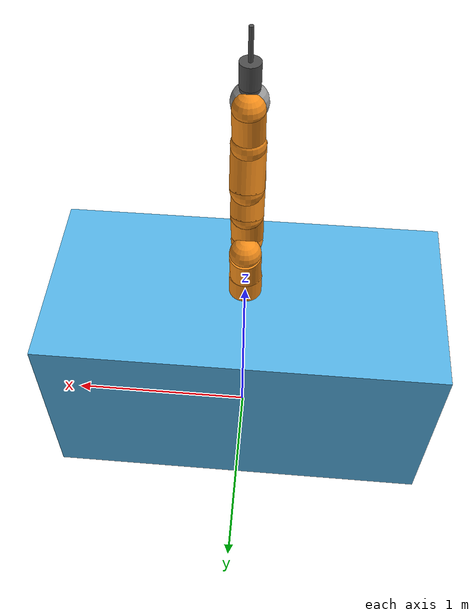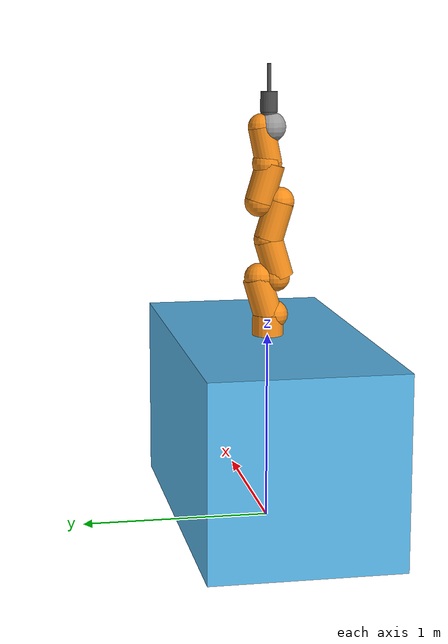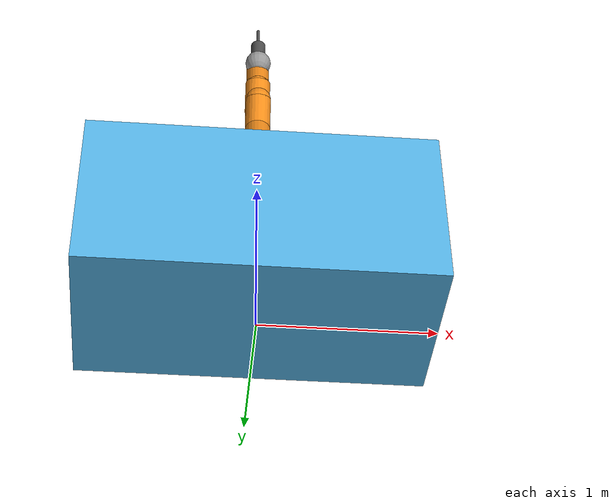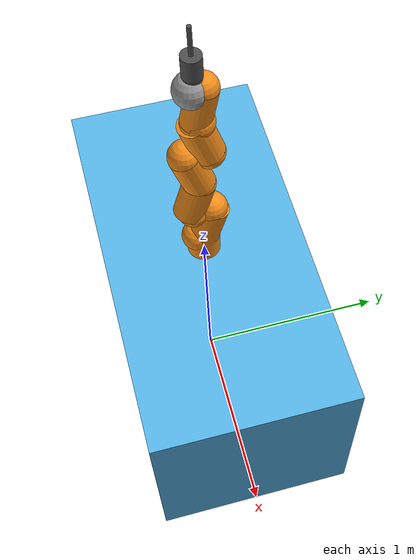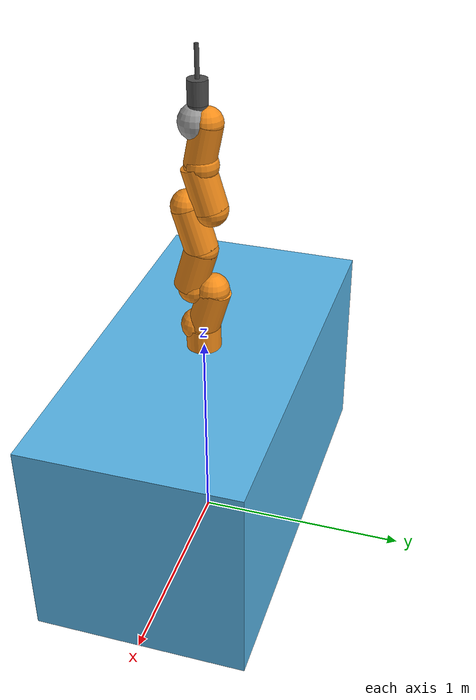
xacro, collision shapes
<?xml version="1.0"?>
<robot xmlns:xacro="http://www.ros.org/wiki/xacro" name="KUKA">

	<!-- Include all models -->
	<xacro:include filename="$(find kuka_description)/model/kuka_lwr.urdf.xacro"/>

	<!-- and assemble your robot -->
	<!-- Attaching My Robot To the WORLD by introducing a dummy link-->
	<link name="world" />

    <joint name="world_to_box" type="fixed">
	  <parent link="world"/>
      <child link="box"/>
    </joint>

	<link name="box">
		<inertial>
			<mass value="5.0"/>
			<origin rpy="0 0 0" xyz="0 0 0"/>
			<inertia ixx="0.01"
             iyy="0.01"
             izz="0.01"
             ixy="0" iyz="0" ixz="0"/>
		</inertial>
		<visual>
			<origin xyz="0 0 0.50" rpy="0 0 0"/>
			<geometry>
				<box size="2.0 1.0 1.0"/>
			</geometry>
		</visual>
		<collision>
			<origin xyz="0 0 0.50" rpy="0 0 0"/>
			<geometry>
				<box size="2.0 1.0 1.0"/>
			</geometry>
		</collision>
	</link>

	<gazebo reference="box">
		<static>true</static>
	</gazebo>

	<!-- using the models -->
	<xacro:kuka_lwr parent="box" name="KUKA">
		<origin xyz="0 0 1" rpy="0 0 0"/>
	</xacro:kuka_lwr>

</robot>

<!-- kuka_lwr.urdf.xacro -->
<robot name="kuka_lwr" xmlns:xacro="http://www.ros.org/wiki/xacro">

	<!-- utils /-->
	<xacro:include filename="$(find kuka_description)/model/utils.xacro"/>
	<xacro:include filename="$(find kuka_description)/model/kuka_materials.xacro"/>

	<!-- gazebo and transmission models /-->
	<xacro:include filename="$(find kuka_description)/model/kuka_lwr.gazebo.xacro"/>
	<xacro:include filename="$(find kuka_description)/model/kuka_lwr.transmission.xacro"/>

	<!-- properties /-->
	<xacro:property name="base_mass" value="2.0"/>
	<xacro:property name="link_mass" value="2.35"/>
    <xacro:property name="wrist_mass" value="1.1"/>
    <xacro:property name="tip_mass" value="2.60"/>
    <!--xacro:property name="tip_mass" value="0.25"/-->
	<xacro:property name="velocity_scale" value="1"/>
	<xacro:property name="effort_scale" value="1"/>

	<xacro:property name="max_stiffness" value="5000"/>
	<xacro:property name="min_stiffness" value="0"/>
	<xacro:property name="rate_stiffness" value="20000"/> <!-- reflex to stiffness -->

	<!-- URDF model /-->
	<xacro:macro name="kuka_lwr" params="parent name *origin">

		<!-- First (shoulder) element of the arm. Fixed to its parent. -->
		<joint name="${parent}_${name}_base_joint" type="fixed">
			<xacro:insert_block name="origin"/>
			<origin xyz="0 0 0" rpy="0 0 0"/>
			<parent link="${parent}"/>
			<child link="${name}_base_link"/>
		</joint>

        <!-- List of Links -->

		<!-- Link 1 -->
		<link name="${name}_base_link">
			<inertial>
				<mass value="${base_mass}"/>
				<origin xyz="0 0 0.055"  />
				<xacro:cylinder_inertia_def radius="0.06" length="0.11" mass="${base_mass}"/>
			</inertial>
			<visual>
				<origin xyz="0 0 0" rpy="0 0 ${M_PI}"/>
				<geometry>
					<mesh filename="package://kuka_description/meshes/base.STL"/>
				</geometry>
				<material name="Kuka/Orange"/>
			</visual>
			<collision>
				<origin xyz="0 0 0.055" rpy="0 0 ${M_PI}"/>
				<geometry>
					<cylinder radius="0.0815" length="0.11"/>
				</geometry>
			</collision>
		</link>

		<!-- Link 2 -->
		<link name="${name}_1_link">
			<inertial>
				<mass value="${link_mass}"/>
				<origin rpy="0 0 0" xyz="0 -0.06 0.130"/>
				<xacro:cuboid_inertia_def length="0.12" width="0.06" height="0.260" mass="${link_mass}"/>
			</inertial>
			<visual>
				<origin xyz="0 0 -0.008" rpy="0 0 ${M_PI}"/>
				<geometry>
					<mesh filename="package://kuka_description/meshes/link_1.STL"/>
				</geometry>
				<material name="Kuka/Orange"/>
			</visual>
			<collision>
				<origin xyz="0 -0.03 0" rpy="0 0 0"/>
				<geometry>
					<sphere radius="0.077"/>
				</geometry>
			</collision>
			<collision>
				<origin xyz="0 0.05 0.2" rpy="0 0 0"/>
				<geometry>
					<sphere radius="0.077"/>
				</geometry>
			</collision>
			<collision>
				<origin xyz="0 0.03 0.1" rpy="-0.291 0 0"/>
				<geometry>
					<cylinder radius="0.077" length="0.208"/>
				</geometry>
			</collision>
		</link>

		<!-- Link 3 -->
        <link name="${name}_2_link">
			<inertial>
				<mass value="${link_mass}"/>
				<origin rpy="0 0 0" xyz="0 0.06 ${0.130 - 0.06}"/>
				<xacro:cuboid_inertia_def length="0.12" width="0.06" height="0.260" mass="${link_mass}"/>
			</inertial>
			<visual>
				<origin xyz="0 0 0.0" rpy="0 0 ${M_PI}"/>
				<geometry>
					<mesh filename="package://kuka_description/meshes/link_2.STL"/>
				</geometry>
				<material name="Kuka/Orange"/>
			</visual>
			<collision>
				<origin xyz="0 0 0.2" rpy="0 0 0"/>
				<geometry>
					<sphere radius="0.077"/>
				</geometry>
			</collision>
			<collision>
				<origin xyz="0 -0.04 0.0" rpy="0 0 0"/>
				<geometry>
					<sphere radius="0.077"/>
				</geometry>
			</collision>
			<collision>
				<origin xyz="0 -0.03 0.1" rpy="-0.291 0 0"/>
				<geometry>
					<cylinder radius="0.077" length="0.208"/>
				</geometry>
			</collision>
		</link>

		<!-- Link 4 -->
		<link name="${name}_3_link">
			<inertial>
				<mass value="${link_mass}"/>
				<origin rpy="0 0 0" xyz="0 0.06 0.130"/>
				<xacro:cuboid_inertia_def length="0.12" width="0.06" height="0.260" mass="${link_mass}"/>
			</inertial>
			<visual>
				<origin xyz="0 0 -0.008" rpy="0 0 ${M_PI}"/>
				<geometry>
					<mesh filename="package://kuka_description/meshes/link_3.STL"/>
				</geometry>
				<material name="Kuka/Orange"/>
			</visual>
			<collision>
				<origin xyz="0 0 0.0" rpy="0 0 0"/>
				<geometry>
					<sphere radius="0.077"/>
				</geometry>
			</collision>
			<collision>
				<origin xyz="0 -0.06 0.2" rpy="0 0 0"/>
				<geometry>
					<sphere radius="0.077"/>
				</geometry>
			</collision>
			<collision>
				<origin xyz="0 -0.03 0.1" rpy="0.291 0 0"/>
				<geometry>
					<cylinder radius="0.077" length="0.208"/>
				</geometry>
			</collision>
		</link>

		<!-- Link 5 -->
		<link name="${name}_4_link">
			<inertial>
				<mass value="${link_mass}"/>
				<origin rpy="0 0 0" xyz="0 -0.06 ${0.130 - 0.06}"/>
				<xacro:cuboid_inertia_def length="0.12" width="0.06" height="0.2600" mass="${link_mass}"/>
			</inertial>
			<visual>
				<origin xyz="0 0 0" rpy="0 0 ${M_PI}"/>
				<geometry>
					<mesh filename="package://kuka_description/meshes/link_4.STL"/>
				</geometry>
				<material name="Kuka/Orange"/>
			</visual>
			<collision>
			<origin xyz="0 0.01 0.2" rpy="0 0 0"/>
			<geometry>
				<sphere radius="0.077"/>
			</geometry>
			</collision>
			<collision>
				<origin xyz="0 0.05 0.0" rpy="0 0 0"/>
				<geometry>
					<sphere radius="0.077"/>
				</geometry>
			</collision>
			<collision>
				<origin xyz="0 0.02 0.1" rpy="0.291 0 0"/>
				<geometry>
					<cylinder radius="0.077" length="0.208"/>
				</geometry>
			</collision>
		</link>

		<!-- Link 6 -->
        <link name="${name}_5_link">
			<inertial>
				<mass value="${link_mass}"/>
				<origin rpy="0 0 0" xyz="0 0 0.124"/>
				<xacro:cuboid_inertia_def length="0.12" width="0.06" height="0.248" mass="${link_mass}"/>
			</inertial>
			<visual>
				<origin xyz="0 0 -0.008" rpy="0 0 ${M_PI}"/>
				<geometry name="${name}_5_geom">
					<mesh filename="package://kuka_description/meshes/link_5.STL"/>
				</geometry>
				<material name="Kuka/Orange"/>
			</visual>
			<collision>
				<origin xyz="0 0 0.0" rpy="0 0 0"/>
				<geometry>
					<sphere radius="0.07"/>
				</geometry>
			</collision>
			<collision>
				<origin xyz="0 0.04 0.19" rpy="0 0 0"/>
				<geometry>
					<sphere radius="0.07"/>
				</geometry>
			</collision>
			<collision>
				<origin xyz="0 0.02 0.095" rpy="-0.207 0 0"/>
				<geometry>
					<cylinder radius="0.07" length="0.198"/>
				</geometry>
			</collision>
		</link>

		<!-- Link 7 -->
        <link name="${name}_6_link">
			<inertial>
				<mass value="${wrist_mass}"/>
				<origin rpy="0 0 0" xyz="0 0 0.0625"/>
				<xacro:cuboid_inertia_def length="0.125" width="0.125" height="0.125" mass="${wrist_mass}"/>
			</inertial>
			<visual>
				<origin xyz="0 0 0" rpy="0 0 ${M_PI}"/>
				<geometry>
					<mesh filename="package://kuka_description/meshes/link_6.STL"/>
				</geometry>
			<material name="Kuka/Grey"/>
			</visual>
			<collision>
			<origin xyz="0 -0.01 0" rpy="0 0 ${M_PI}"/>
			<geometry>
				<sphere radius="0.08"/>
			</geometry>
			</collision>
		</link>

		<!-- Link 8 -->
		<link name="${name}_7_link">
			<inertial>
				<mass value="${tip_mass}"/>
				<origin xyz="0 0 0.0025"/>
				<xacro:cylinder_inertia_def radius="0.05" length="0.04" mass="${tip_mass}"/>
			</inertial>
			<visual>
				<origin xyz="0 0 -0.013" rpy="0 0 0"/>
				<geometry>
					<mesh filename="package://kuka_description/meshes/link_7.STL"/>
				</geometry>
			<material name="Kuka/DarkGrey"/>
			</visual>
			<collision>
			<origin xyz="0 0 0.0025" rpy="0 0 0"/>
			<geometry>
				<cylinder radius="0.043" length="0.035"/>
			</geometry>
			</collision>
			<collision>
			<origin xyz="0 0 0.19" rpy="0 0 0"/>
			<geometry>
				<cylinder radius="0.01" length="0.15"/>
			</geometry>
			</collision>
			<collision>
			<origin xyz="0 0 0.07" rpy="0 0 0"/>
			<geometry>
				<cylinder radius="0.045" length="0.105"/>
			</geometry>
			</collision>
		</link>

        <!-- Link 9 -->

        <!-- List of Joints -->
		<!-- Second segment of the arm. Joint along z-axis -->
		<joint name="${name}_a1_joint" type="revolute">
			<origin xyz="0 0 0.11" rpy="0 0 0"/>
			<axis xyz="0 0 1"/>
			<limit lower="${-170 * M_PI / 180}" upper="${170 * M_PI / 180}" effort="176" velocity="${velocity_scale * 110 * M_PI / 180}" />
			<dynamics friction="10.0" damping="1.0"/>
			<parent link="${name}_base_link"/>
			<child link="${name}_1_link"/>
		</joint>

		<!-- Third segment of the arm. Joint along y-axis -->
		<joint name="${name}_a2_joint" type="revolute">
			<origin xyz="0 0 0.2005" rpy="0 0 0"/>
			<axis xyz="0 -1 0"/>
			<limit lower="${-120 * M_PI / 180}" upper="${120 * M_PI / 180}" effort="176" velocity="${velocity_scale * 110 * M_PI / 180}" />
			<dynamics friction="10.0" damping="1.0"/>
			<parent link="${name}_1_link"/>
			<child link="${name}_2_link"/>
		</joint>

		<!-- Fourth element of the arm. z-axis -->
		<joint name="${name}_a3_joint" type="revolute">
			<origin xyz="0 0 0.20" rpy="0 0 0"/>
			<axis xyz="0 0 1"/>
			<limit lower="${-170 * M_PI / 180}" upper="${170 * M_PI / 180}" effort="100" velocity="${velocity_scale * 128 * M_PI / 180}" />
			<dynamics friction="10.0" damping="1.0"/>
			<parent link="${name}_2_link"/>
			<child link="${name}_3_link"/>
		</joint>
		<!-- fifth element of the arm. x-axis -->
		<joint name="${name}_a4_joint" type="revolute">
			<origin xyz="0 0 0.2" rpy="0 0 0"/>
			<axis xyz="0 1 0"/>
			<limit lower="${-120 * M_PI / 180}" upper="${120 * M_PI / 180}" effort="100" velocity="${velocity_scale * 128 * M_PI / 180}" />
			<dynamics friction="10.0" damping="1.0"/>
			<parent link="${name}_3_link"/>
			<child link="${name}_4_link"/>
		</joint>

		<!-- Sixth element of the arm. z-axis -->
		<joint name="${name}_a5_joint" type="revolute">
			<origin xyz="0 0 0.20" rpy="0 0 0"/>
			<axis xyz="0 0 1"/>
			<limit lower="${-170 * M_PI / 180}" upper="${170 * M_PI / 180}" effort="100" velocity="${velocity_scale * 204 * M_PI / 180}" />
			<dynamics friction="10.0" damping="1.0"/>
			<parent link="${name}_4_link"/>
			<child link="${name}_5_link"/>
		</joint>

		<!-- Seventh element of the arm. z-axis -->
		<joint name="${name}_a6_joint" type="revolute">
			<origin xyz="0 0 0.19" rpy="0 0 0"/>
			<axis xyz="0 -1 0"/>
			<limit lower="${-120 * M_PI / 180}" upper="${120 * M_PI / 180}" effort="38" velocity="${velocity_scale * 184 * M_PI / 180}" />
			<dynamics friction="10.0" damping="1.0"/>
			<parent link="${name}_5_link"/>
			<child link="${name}_6_link"/>
		</joint>

		<!-- Eighth element of the arm. z-axis -->
		<joint name="${name}_a7_joint" type="revolute">
			<origin xyz="0 0 0.06" rpy="0 0 0"/>
			<axis xyz="0 0 1"/>
			<limit lower="${-170 * M_PI / 180}" upper="${170 * M_PI / 180}" effort="38" velocity="${velocity_scale * 184 * M_PI / 180}" />
			<dynamics friction="10.0" damping="1.0"/>
			<parent link="${name}_6_link"/>
			<child link="${name}_7_link"/>
		</joint>

		<!-- Nineth element of the arm. z-axis -->

		<xacro:kuka_lwr_gazebo name="${name}"/>
		<xacro:kuka_lwr_transmission name="${name}"/>

	</xacro:macro>

</robot>
